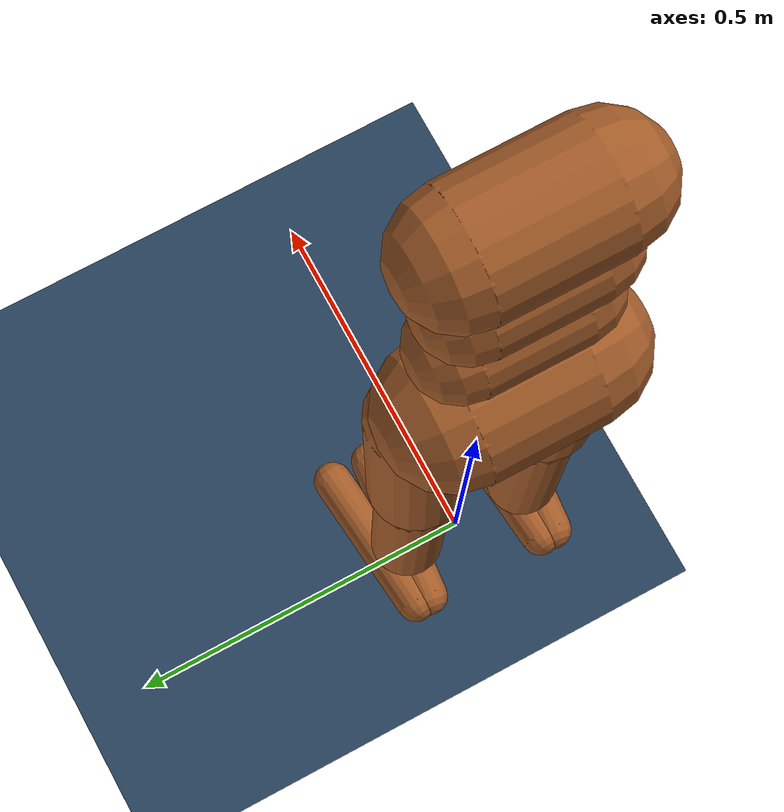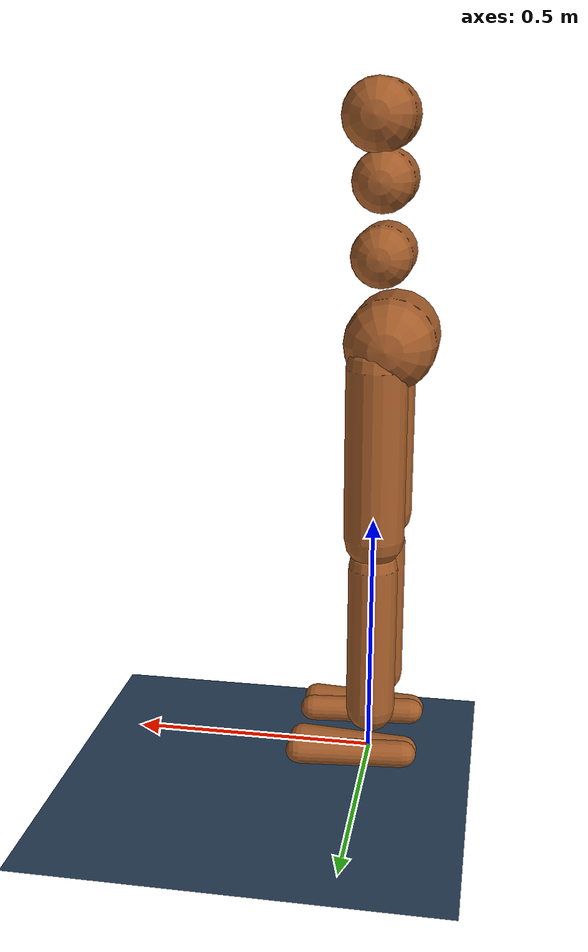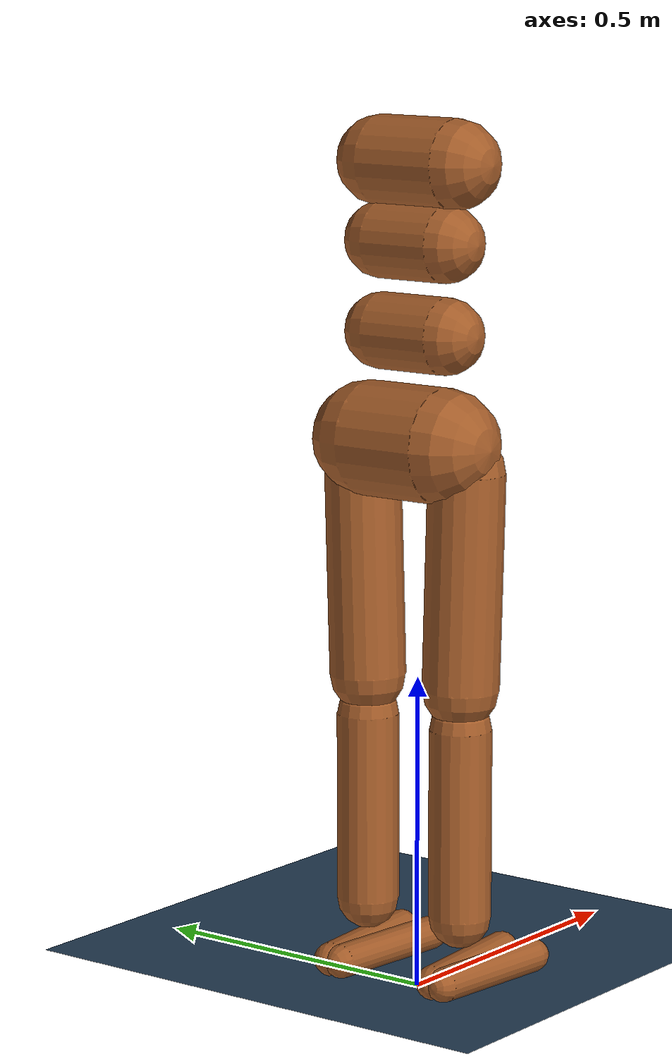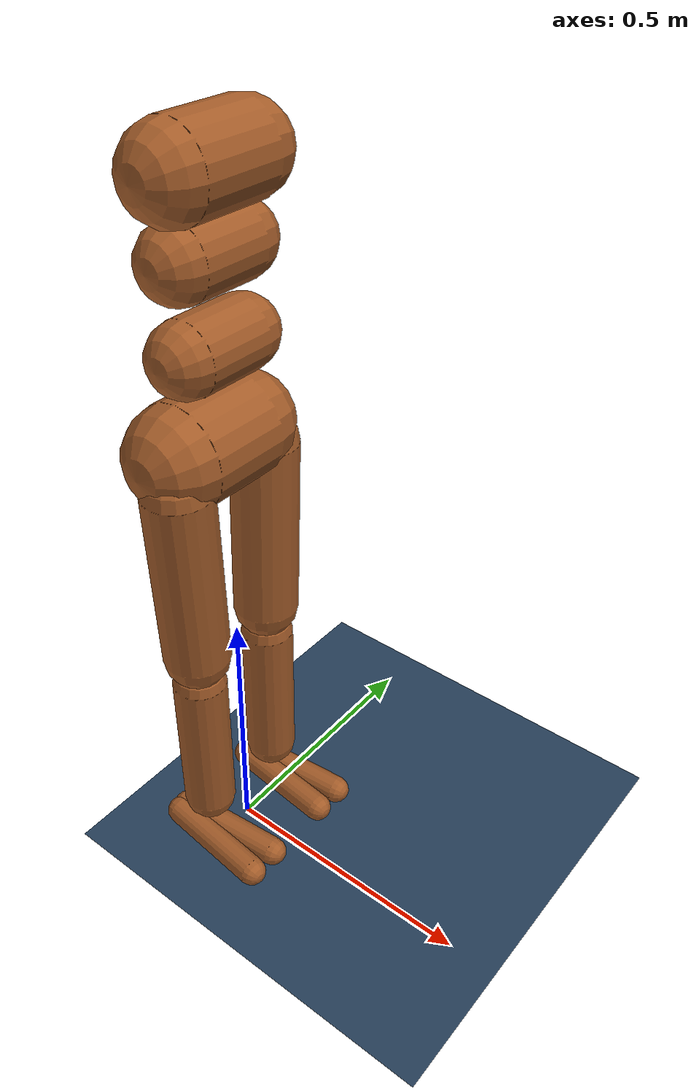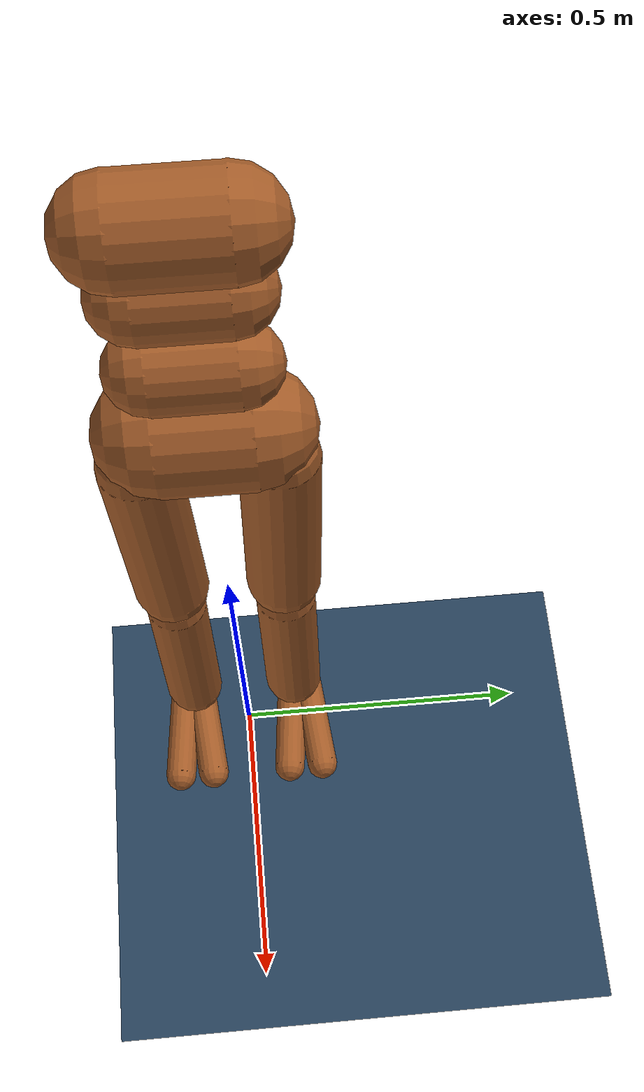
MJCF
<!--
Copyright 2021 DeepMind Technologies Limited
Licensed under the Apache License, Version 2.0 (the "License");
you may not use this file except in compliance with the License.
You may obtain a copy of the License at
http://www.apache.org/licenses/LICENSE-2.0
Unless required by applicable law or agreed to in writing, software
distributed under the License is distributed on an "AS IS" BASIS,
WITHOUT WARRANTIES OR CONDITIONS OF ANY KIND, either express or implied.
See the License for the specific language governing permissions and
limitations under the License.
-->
<mujoco model="Humanoid">

<!-- Modified from the above to reduce the number of degrees of freedom
-->
  <compiler angle="degree" inertiafromgeom="auto"/>
  <option timestep="0.002"/>

  <keyframe>
    <key name="q_init" qpos="0.0 0.0 1.2 0 -0.1 0 1 0.1 0.0 0 -0.1 -0.1 -0.717 1.414 0 -0.807 -0.1 -0.1 -0.717 1.414 0 -0.807"/>
  </keyframe>

  <asset>
    <texture type="skybox" builtin="gradient" rgb1=".3 .5 .7" rgb2="0 0 0" width="512" height="512"/>
    <texture name="body" type="cube" builtin="flat" mark="cross" width="127" height="1278"
             rgb1="0.8 0.6 0.4" rgb2="0.8 0.6 0.4" markrgb="1 1 1" random="0.01"/>
    <material name="body" texture="body" texuniform="true" rgba="0.8 0.6 .4 1"/>
    <texture name="grid" type="2d" builtin="checker" width="512" height="512" rgb1=".1 .2 .3" rgb2=".2 .3 .4"/>
    <material name="grid" texture="grid" texrepeat="1 1" texuniform="true" reflectance=".2"/>
  </asset>

  <default>
    <motor ctrlrange="-8 8" ctrllimited="true"/>
    <default class="body">
      <geom type="capsule" condim="1" friction=".7" solimp=".9 .99 .003" solref=".015 1" material="body" density="1000.0"/>
      <joint type="hinge" damping=".2" stiffness="1" armature=".01" limited="true" solimplimit="0 .99 .01"/>
      <default class="big_joint">
        <joint damping="5" stiffness="1"/>
        <default class="big_stiff_joint">
          <joint stiffness="1"/>
        </default>
      </default>
    </default>
  </default>

  <visual>
    <map force="0.07" zfar="30"/>
    <scale forcewidth="0.05" com="0.1" contactwidth="0.05"/>
    <rgba haze="0.15 0.25 0.35 1" contactforce="0.95 0.0 0.0 0.9" com="1.0 0.0 0.0 0.5"/>
    <quality shadowsize="4096"/>
    <global offwidth="800" offheight="800"/>
  </visual>

  <worldbody>
    <geom name="floor" size="0 0 .05" type="plane" material="grid" condim="3"/>
    <light name="spotlight" mode="targetbodycom" target="torso"
           diffuse=".8 .8 .8" specular="0.3 0.3 0.3" pos="0 -20 4" cutoff="10"/>
    <body name="torso" pos="0 0 1.3" childclass="body">
      <light name="top" pos="0 0 2" mode="trackcom"/>
      <camera name="back" pos="-3 0 1" xyaxes="0 -1 0 1 0 2" mode="trackcom"/>
      <camera name="side" pos="0 -3 1" xyaxes="1 0 0 0 1 2" mode="trackcom"/>
      <freejoint name="root"/>
      <geom name="torso" fromto="0 -.07 0 0 .07 0" size=".07"/>
      <geom name="upper_waist" fromto="-.01 -.06 -.12 -.01 .06 -.12" size=".06"/>
      <body name="lower_waist" pos="-.01 0 -.26">
        <geom name="lower_waist" fromto="0 -.06 0 0 .06 0" size=".06"/>
        <joint name="abdomen_z" pos="0 0 .065" axis="0 0 1" range="-45 45" class="big_stiff_joint"/>
        <joint name="abdomen_y" pos="0 0 .065" axis="0 1 0" range="-75 30" class="big_joint"/>
        <body name="pelvis" pos="0 0 -.165">
          <joint name="abdomen_x" pos="0 0 .1" axis="1 0 0" range="-35 35" class="big_joint"/>
          <geom name="butt" fromto="-.02 -.07 0 -.02 .07 0" size=".09"/>
          <body name="right_thigh" pos="0 -.1 -.04">
            <joint name="right_hip_x" axis="1 0 0" range="-25 5" class="big_joint"/>
            <joint name="right_hip_z" axis="0 0 1" range="-60 35" class="big_joint"/>
            <joint name="right_hip_y" axis="0 1 0" range="-110 20" class="big_stiff_joint"/>
            <geom name="right_thigh" fromto="0 0 0 0 .01 -.34" size=".06"/>
            <body name="right_shin" pos="0 .01 -.403">
              <joint name="right_knee" pos="0 0 .02" axis="0 1 0" range="2 160"/>
              <geom name="right_shin" fromto="0 0 0 0 0 -.3"  size=".049"/>
              <body name="right_foot" pos="0 0 -.39">
                <joint name="right_ankle_y" pos="0 0 .08" axis="0 1 0" range="-50 50" stiffness="6"/>
                <joint name="right_ankle_x" pos="0 0 .04" axis="1 0 .5" range="-50 50" stiffness="3"/>
                <geom name="right_right_foot" fromto="-.07 -.02 0 .14 -.04 0" size=".027"/>
                <geom name="left_right_foot" fromto="-.07 0 0 .14  .02 0" size=".027"/>
              </body>
            </body>
          </body>
          <body name="left_thigh" pos="0 .1 -.04">
            <joint name="left_hip_x" axis="-1 0 0" range="-25 5" class="big_joint"/>
            <joint name="left_hip_z" axis="0 0 -1" range="-60 35" class="big_joint"/>
            <joint name="left_hip_y" axis="0 1 0" range="-110 20" class="big_stiff_joint"/>
            <geom name="left_thigh" fromto="0 0 0 0 -.01 -.34" size=".06"/>
            <body name="left_shin" pos="0 -.01 -.403">
              <joint name="left_knee" pos="0 0 .02" axis="0 1 0" range="2 160"/>
              <geom name="left_shin" fromto="0 0 0 0 0 -.3"  size=".049"/>
              <body name="left_foot" pos="0 0 -.39">
                <joint name="left_ankle_y" pos="0 0 .08" axis="0 1 0" range="-50 50" stiffness="6"/>
                <joint name="left_ankle_x" pos="0 0 .04" axis="1 0 .5" range="-50 50" stiffness="3"/>
                <geom name="left_left_foot" fromto="-.07 .02 0 .14 .04 0" size=".027"/>
                <geom name="right_left_foot" fromto="-.07 0 0 .14 -.02 0" size=".027"/>
              </body>
            </body>
          </body>
        </body>
      </body>
    </body>
  </worldbody>

  <actuator>
    <motor name="abdomen_y"       gear="40"  joint="abdomen_y"/>
    <motor name="abdomen_z"       gear="40"  joint="abdomen_z"/>
    <motor name="abdomen_x"       gear="40"  joint="abdomen_x"/>
    <motor name="right_hip_x"     gear="40"  joint="right_hip_x"/>
    <motor name="right_hip_z"     gear="40"  joint="right_hip_z"/>
    <motor name="right_hip_y"     gear="120" joint="right_hip_y"/>
    <motor name="right_knee"      gear="80"  joint="right_knee"/>
    <motor name="right_ankle_x"   gear="20"  joint="right_ankle_x"/>
    <motor name="right_ankle_y"   gear="20"  joint="right_ankle_y"/>
    <motor name="left_hip_x"      gear="40"  joint="left_hip_x"/>
    <motor name="left_hip_z"      gear="40"  joint="left_hip_z"/>
    <motor name="left_hip_y"      gear="120" joint="left_hip_y"/>
    <motor name="left_knee"       gear="80"  joint="left_knee"/>
    <motor name="left_ankle_x"    gear="20"  joint="left_ankle_x"/>
    <motor name="left_ankle_y"    gear="20"  joint="left_ankle_y"/>
  </actuator>
</mujoco>
